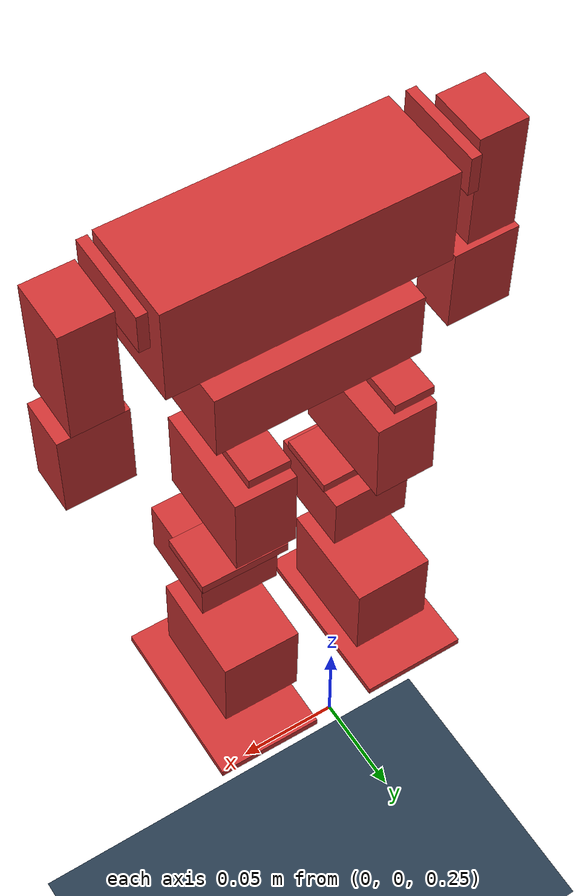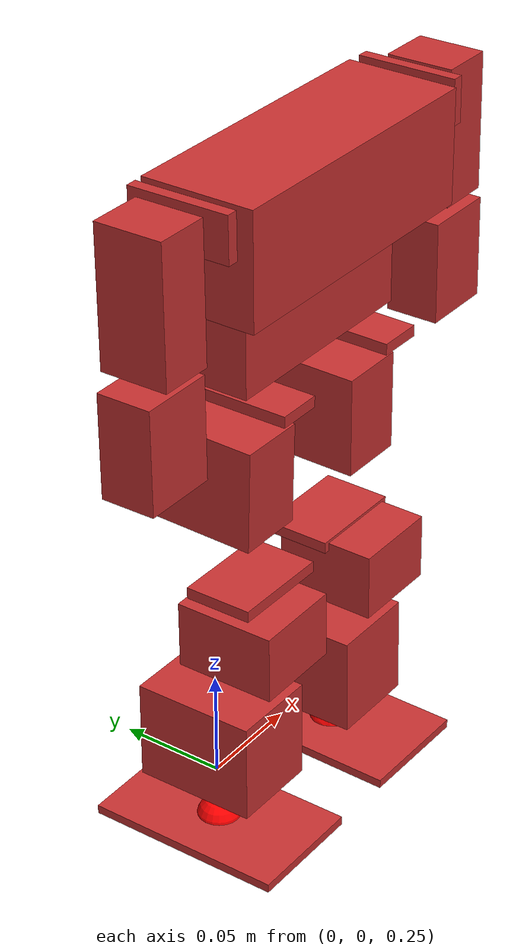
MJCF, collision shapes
<mujoco model="NUBI">
  <compiler angle="radian" meshdir="meshes/" autolimits="true" />
  <option gravity="0 0 -9.81" timestep="0.002" iterations="50" tolerance="1e-4">
    <flag contact="enable" gravity="enable" />
  </option>
  <asset>
    <mesh name="base_link_mesh" file="base_link.STL" />
    <mesh name="chest_mesh" file="chest.STL" />
    <mesh name="LAnkle_mesh" file="LAnkle.STL" />
    <mesh name="LFemur_mesh" file="LFemur.STL" />
    <mesh name="LFoot_mesh" file="LFoot.STL" />
    <mesh name="LForearm_mesh" file="LForearm.STL" />
    <mesh name="LHip_mesh" file="LHip.STL" />
    <mesh name="LHumerus_mesh" file="LHumerus.STL" />
    <mesh name="LPelvis_mesh" file="LPelvis.STL" />
    <mesh name="LShoulder_mesh" file="LShoulder.STL" />
    <mesh name="LTibia_mesh" file="LTibia.STL" />
    <mesh name="RAnkle_mesh" file="RAnkle.STL" />
    <mesh name="RFemur_mesh" file="RFemur.STL" />
    <mesh name="RFoot_mesh" file="RFoot.STL" />
    <mesh name="RForearm_mesh" file="RForearm.STL" />
    <mesh name="RHip_mesh" file="RHip.STL" />
    <mesh name="RHumerus_mesh" file="RHumerus.STL" />
    <mesh name="RPelvis_mesh" file="RPelvis.STL" />
    <mesh name="RShoulder_mesh" file="RShoulder.STL" />
    <mesh name="RTibia_mesh" file="RTibia.STL" />
    <texture type="skybox" builtin="gradient" rgb1="0.4 0.6 0.8" rgb2="0 0 0" width="512" height="512" />
    <texture name="texplane" type="2d" builtin="checker" rgb1="0.2 0.3 0.4" rgb2="0.1 0.15 0.2" width="512" height="512" mark="cross" markrgb="0.8 0.8 0.8" />
    <material name="matplane" reflectance="0.3" texture="texplane" texrepeat="1 1" texuniform="true" />
  </asset>
  <default>
    <default class="visual">
      <!--0.435 0.941 0.341 green-->
      <geom type="mesh" contype="0" conaffinity="0" group="1" rgba="1 1 1 1" mass="0" />
    </default>
    <default class="collision">
      <geom type="box" group="0" rgba="0.8 0.2 0.2 0.4" friction="1.2 0.01 0.001" margin="0.002" contype="2" conaffinity="3" />
    </default>
    <joint damping="0.1" frictionloss="0.05" armature="0.002" limited="true" range="-2.61 2.61" margin="0.01" />
    <position ctrlrange="-2.61 2.61" forcelimited="true" />
    <default class="drs_0101">
      <joint armature="0.002" damping="0.1" />
      <position kp="20" kv="2.0" forcerange="-1.2 1.2" />
    </default>
  </default>
  <worldbody>
    <light directional="true" diffuse="0.8 0.8 0.8" specular="0.2 0.2 0.2" pos="0 0 5" dir="0 0 -1" />
    <geom name="floor" type="plane" size="5 5 0.05" material="matplane" friction="1.2 0.01 0.001" group="2" contype="1" conaffinity="1"/>
    <body name="base_link" pos="0 0 0.5">
      <freejoint name="root" />
      <geom class="visual" mesh="base_link_mesh" />
      <geom class="collision" size="0.05 0.02 0.0175" pos="0 -0.035 0" />
      <body name="RPelvis" pos="-0.036449 -0.034878 -0.021648" quat="0.499998 -0.5 0.500002 -0.5">
        <inertial pos="0.007807 0.042111 0.034485" quat="0.5 0.5 0.5 0.5" mass="0.008" diaginertia="3.62733e-06 3.37733e-06 2.83333e-07" />
        <joint name="RHip_yaw" axis="0 1 0" class="drs_0101" /> <!-- Matches URDF -->
        <geom class="visual" mesh="RPelvis_mesh" />
        <geom class="collision" size="0.0355 0.0025 0.01" pos="0 0.002 0" />
        <body name="RHip" pos="0 0.027574 0" quat="0.502821 -0.507363 0.49263 -0.49706">
          <inertial pos="-0.00451761 0.00584714 0.00680019" quat="0.707107 0 0 0.707107" mass="0.099" diaginertia="4.16625e-05 3.23812e-05 2.41313e-05" />
          <joint name="RHip_roll" axis="0.020518 0 0.999789" class="drs_0101" /> <!-- Matches URDF -->
          <geom class="visual" mesh="RHip_mesh" />
          <geom class="collision" size="0.0225 0.015 0.0275" pos="-0.013 0 -0.005" />
          <body name="RFemur" quat="0.707068 0.00725442 0.00725445 0.707071">
            <inertial pos="-0.00183904 0.0648853 0.00822619" quat="0.5 0.5 0.5 0.5" mass="0.02" diaginertia="4.875e-06 3.41667e-06 1.54167e-06" />
            <joint name="RHip_pitch" axis="-1 0 0" class="drs_0101" /> <!-- Matches URDF -->
            <geom class="visual" mesh="RFemur_mesh" />
            <geom class="collision" size="0.0225 0.0025 0.015" pos="0 0.06 0.012" />
            <body name="RTibia" pos="0 0.077764 -1.9824e-05" quat="0.495503 -0.504455 0.495505 0.504457">
              <inertial pos="-0.0173131 -0.00105514 0.0160961" quat="0 0.707107 0 0.707107" mass="0.07" diaginertia="2.11458e-05 1.70625e-05 1.45833e-05" />
              <joint name="RKnee_pitch" axis="0 -0.999839 -0.017944" class="drs_0101" /> <!-- Matches URDF -->
              <geom class="visual" mesh="RTibia_mesh" />
              <geom class="collision" size="0.0225 0.02 0.015" pos="-0.013 0 0.006" />
              <body name="RAnkle" pos="-0.01173 -0.0013874 0.077438" quat="0.00624862 -0.70514 0.00646593 -0.709011">
                <inertial pos="-0.00449028 0.0119293 0.00720708" quat="0.707107 0 0 0.707107" mass="0.099" diaginertia="4.16625e-05 3.81563e-05 2.99062e-05" />
                <joint name="RAnkle_pitch" axis="0 1 0" class="drs_0101" /> <!-- Corrected to URDF (0 1 0) -->
                <geom class="visual" mesh="RAnkle_mesh" />
                <geom class="collision" size="0.0225 0.02 0.0275" pos="-0.014 0 0.015" />
                <body name="RFoot" quat="0.49636 0.499124 -0.503614 -0.500874">
                  <inertial pos="-0.00435903 0.0135169 -0.0286669" quat="0.5 0.5 -0.5 0.5" mass="0.026" diaginertia="2.3868e-05 1.75847e-05 6.35267e-06" />
                  <joint name="RAnkle_roll" axis="0 1 0" class="drs_0101" /> <!-- Corrected to URDF (0 1 0) -->
                  <geom class="visual" mesh="RFoot_mesh" />
                  <geom class="collision" size="0.027 0.045 0.002" pos="-0.005 0.013 -0.028" />
                  <site name="r_foot_site" pos="-0.005 0.013 -0.028" size="0.01" rgba="1 0 0 1" />
                </body>
              </body>
            </body>
          </body>
        </body>
      </body>
      <body name="LPelvis" pos="0.034208 -0.034878 -0.021648" quat="0.497391 0.497393 -0.502595 -0.502593">
        <inertial pos="0.00818363 -0.0421112 0.0360881" quat="0.5 0.5 0.5 0.5" mass="0.008" diaginertia="3.62733e-06 3.37733e-06 2.83333e-07" />
        <joint name="LHip_yaw" axis="0 -1 0" class="drs_0101" /> <!-- Matches URDF -->
        <geom class="visual" mesh="LPelvis_mesh" />
        <geom class="collision" size="0.0355 0.0025 0.01" pos="0 -0.002 0" />
        <body name="LHip" pos="0 -0.027574 0" quat="0.503567 -0.499168 -0.500783 0.496456">
          <inertial pos="-0.00455469 0.00757125 -0.00440685" quat="0.707107 0 0 0.707107" mass="0.099" diaginertia="4.16625e-05 3.23812e-05 2.41313e-05" />
          <joint name="LHip_roll" axis="0.00546537 0 -0.999985" class="drs_0101" /> <!-- Matches URDF -->
          <geom class="visual" mesh="LHip_mesh" />
          <geom class="collision" size="0.0225 0.015 0.0275" pos="-0.013 0 0.005" />
          <body name="LFemur" quat="0.707103 -0.00191625 -0.00191626 0.707105">
            <inertial pos="-2.38766e-06 0.0751215 0.00345399" quat="0.5 0.5 0.5 0.5" mass="0.02" diaginertia="4.875e-06 3.41667e-06 1.54167e-06" />
            <joint name="LHip_pitch" axis="-1 0 0" class="drs_0101" /> <!-- Corrected to URDF (-1 0 0) -->
            <geom class="visual" mesh="LFemur_mesh" />
            <geom class="collision" size="0.0225 0.0025 0.015" pos="0 0.07 0" />
            <body name="LTibia" pos="0 0.077764 0" quat="0.5 -0.5 -0.499999 -0.500002">
              <inertial pos="-0.017312 0.00260477 0.0161131" quat="0 0.707107 0 0.707107" mass="0.07" diaginertia="2.11458e-05 1.70625e-05 1.45833e-05" />
              <joint name="LKnee_pitch" axis="0 1 0" class="drs_0101" /> <!-- Matches URDF -->
              <geom class="visual" mesh="LTibia_mesh" />
              <geom class="collision" size="0.0225 0.02 0.015" pos="-0.013 0 0.006" />
              <body name="LAnkle" pos="-0.01173 0.0013874 0.077438" quat="0.702924 3.0639e-08 -0.711265 -3.0639e-08">
                <inertial pos="-0.00449343 0.00928858 -0.00488294" quat="0.707107 0 0 0.707107" mass="0.099" diaginertia="4.16625e-05 3.81563e-05 2.99062e-05" />
                <joint name="LAnkle_pitch" axis="0 1 0" class="drs_0101" /> <!-- Corrected to URDF (0 1 0) -->
                <geom class="visual" mesh="LAnkle_mesh" />
                <geom class="collision" size="0.0225 0.02 0.0275" pos="-0.014 0 -0.015" />
                <body name="LFoot" quat="0.502869 -0.507316 -0.492667 -0.497023">
                  <inertial pos="-0.0135837 0.0288119 0.00344363" quat="0.5 0.5 0.5 0.5" mass="0.026" diaginertia="2.3868e-05 1.75847e-05 6.35267e-06" />
                  <joint name="LAnkle_roll" axis="-1 0 0" class="drs_0101" /> <!-- Corrected to URDF (-1 0 0) -->
                  <geom class="visual" mesh="LFoot_mesh" />
                  <geom class="collision" size="0.045 0.002 0.027" pos="-0.013 0.028 0.005" />
                  <site name="l_foot_site" pos="-0.013 0.028 0.005" size="0.01" rgba="1 0 0 1" />
                </body>
              </body>
            </body>
          </body>
        </body>
      </body>
      <body name="chest" pos="0 -0.046578 0.028478" quat="0.500048 -0.499952 -0.49995 -0.50005">
        <inertial pos="0.023725 -0.00161286 0.000103876" quat="0.707107 0.707107 0 0" mass="0.172" diaginertia="0.000297058 0.000297058 7.16667e-05" />
        <joint name="core" axis="0 -1 0" class="drs_0101" /> <!-- Matches URDF -->
        <geom class="visual" mesh="chest_mesh" />
        <geom class="collision" size="0.025 0.0675 0.025" pos="0.02 0 0" />
        <body name="RShoulder" pos="0.036528 -0.073721 5e-05" quat="0.704061 2.23276e-08 -0.71014 -2.23276e-08">
          <inertial pos="-0.00131252 -0.00856617 -7.4122e-09" quat="0.5 0.5 0.5 0.5" mass="0.005" diaginertia="1.01042e-06 8.54167e-07 1.77083e-07" />
          <joint name="RShoulder_pitch" axis="0 -1 0" class="drs_0101" /> <!-- Matches URDF -->
          <geom class="visual" mesh="RShoulder_mesh" />
          <geom class="collision" size="0.0225 0.0025 0.01" pos="0 -0.0025 0" />
          <body name="RHumerus" pos="0 -0.0215 0" quat="0.499998 0.500002 0.5 -0.5">
            <inertial pos="-0.0474047 0.00155518 0.00068816" quat="0 0.707107 0 0.707107" mass="0.0545" diaginertia="2.04375e-05 1.8966e-05 6.7035e-06" />
            <joint name="RShoulder_roll" axis="0 -1 0" class="drs_0101" /> <!-- Matches URDF -->
            <geom class="visual" mesh="RHumerus_mesh" />
            <geom class="collision" size="0.03 0.015 0.012" pos="-0.021 0 0" />
            <body name="RForearm" pos="-0.067878 0.0016 0" quat="0.707105 -0.707108 0 0">
              <inertial pos="-0.0045111 0.015875 0.002325" quat="0 0.707107 0 0.707107" mass="0.0495" diaginertia="1.28453e-05 1.07291e-05 6.86813e-06" />
              <joint name="RElbow_pitch" axis="0 -1 0" class="drs_0101" /> <!-- Matches URDF -->
              <geom class="visual" mesh="RForearm_mesh" />
              <geom class="collision" size="0.0225 0.0165 0.012" pos="-0.012 0 0" />
            </body>
          </body>
        </body>
        <body name="LShoulder" pos="0.036528 0.070779 5e-05" quat="-2.60849e-06 0.704061 2.58616e-06 0.71014">
          <inertial pos="-0.00131252 -0.00856617 -7.45284e-09" quat="0.5 0.5 0.5 0.5" mass="0.005" diaginertia="1.01042e-06 8.54167e-07 1.77083e-07" />
          <joint name="LShoulder_pitch" axis="0 -1 0" class="drs_0101" /> <!-- Matches URDF -->
          <geom class="visual" mesh="LShoulder_mesh" />
          <geom class="collision" size="0.0225 0.0025 0.01" pos="0 -0.0025 0" />
          <body name="LHumerus" pos="0 -0.0215 0" quat="0.499998 0.5 -0.5 0.500002">
            <inertial pos="-0.0474049 0.00145883 -0.000615198" quat="0 0.707107 0 0.707107" mass="0.0545" diaginertia="2.04375e-05 1.8966e-05 6.7035e-06" />
            <joint name="LShoulder_roll" axis="0 -1 0" class="drs_0101" /> <!-- Matches URDF -->
            <geom class="visual" mesh="LHumerus_mesh" />
            <geom class="collision" size="0.03 0.015 0.012" pos="-0.021 0 0" />
            <body name="LForearm" pos="-0.067878 0.0015 0" quat="0.707105 0.707108 0 0">
              <inertial pos="-0.0045111 0.015925 0.002325" quat="0 0.707107 0 0.707107" mass="0.0495" diaginertia="1.28453e-05 1.07291e-05 6.86813e-06" />
              <joint name="LElbow_pitch" axis="0 -1 0" class="drs_0101" /> <!-- Matches URDF -->
              <geom class="visual" mesh="LForearm_mesh" />
              <geom class="collision" size="0.0225 0.0165 0.012" pos="-0.012 0 0" />
            </body>
          </body>
        </body>
      </body>
    </body>
  </worldbody>
  <actuator>
    <position name="RHip_yaw_p"    joint="RHip_yaw"    class="drs_0101" />
    <position name="RHip_roll_p"   joint="RHip_roll"   class="drs_0101" />
    <position name="RHip_pitch_p"  joint="RHip_pitch"  class="drs_0101" />
    <position name="RKnee_pitch_p" joint="RKnee_pitch" class="drs_0101" />
    <position name="RAnkle_pitch_p" joint="RAnkle_pitch" class="drs_0101" />
    <position name="RAnkle_roll_p" joint="RAnkle_roll" class="drs_0101" />
    <position name="LHip_yaw_p"    joint="LHip_yaw"    class="drs_0101" />
    <position name="LHip_roll_p"   joint="LHip_roll"   class="drs_0101" />
    <position name="LHip_pitch_p"  joint="LHip_pitch"  class="drs_0101" />
    <position name="LKnee_pitch_p" joint="LKnee_pitch" class="drs_0101" />
    <position name="LAnkle_pitch_p" joint="LAnkle_pitch" class="drs_0101" />
    <position name="LAnkle_roll_p" joint="LAnkle_roll" class="drs_0101" />
    <position name="core_p"        joint="core"        class="drs_0101" />
    <position name="RShoulder_pitch_p" joint="RShoulder_pitch" class="drs_0101" />
    <position name="RShoulder_roll_p"  joint="RShoulder_roll"  class="drs_0101" />
    <position name="RElbow_pitch_p"    joint="RElbow_pitch"    class="drs_0101" />
    <position name="LShoulder_pitch_p" joint="LShoulder_pitch" class="drs_0101" />
    <position name="LShoulder_roll_p"  joint="LShoulder_roll"  class="drs_0101" />
    <position name="LElbow_pitch_p"    joint="LElbow_pitch"    class="drs_0101" />
  </actuator>
</mujoco>
